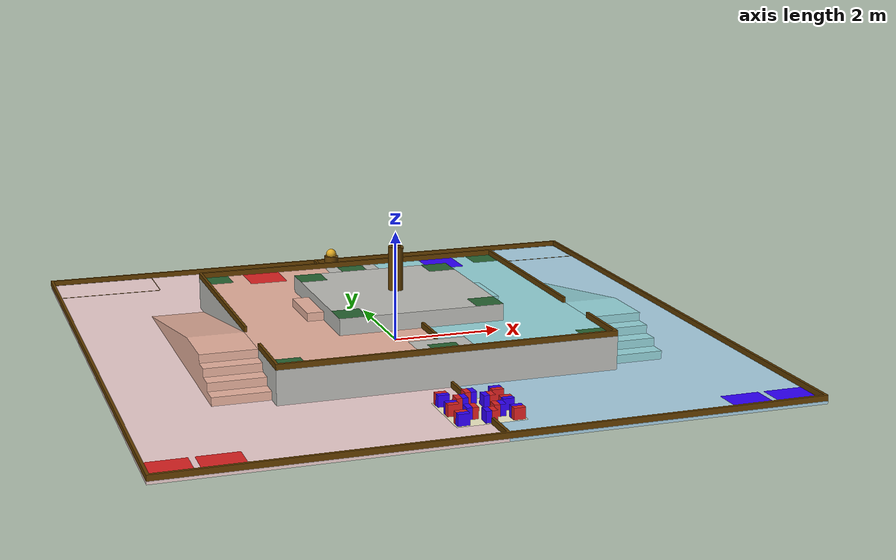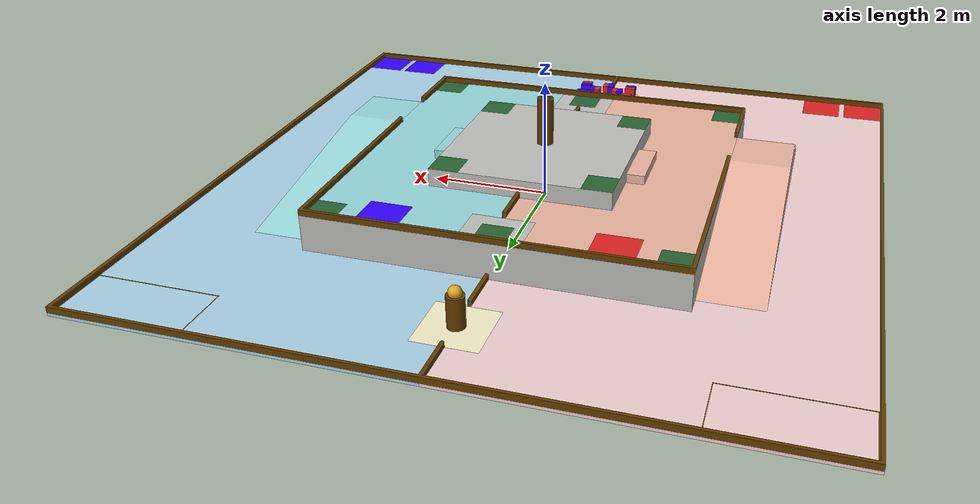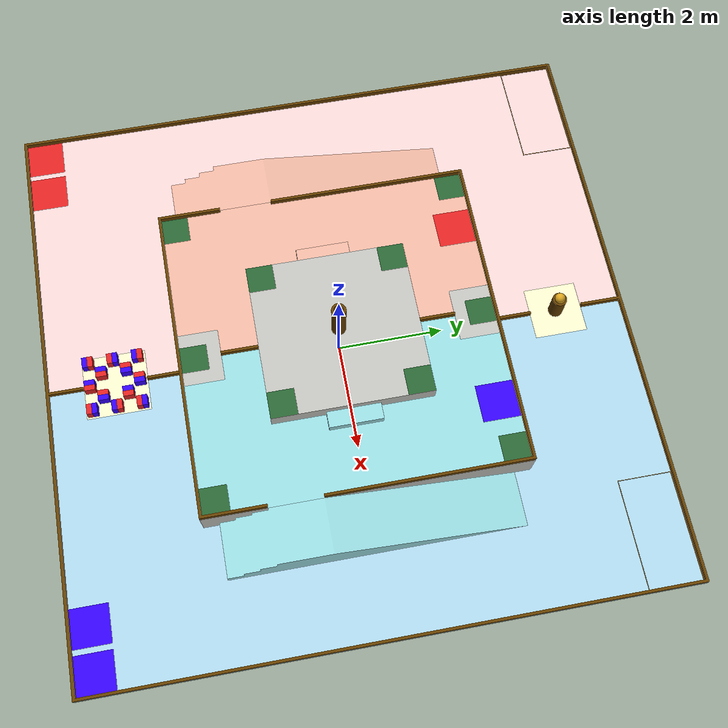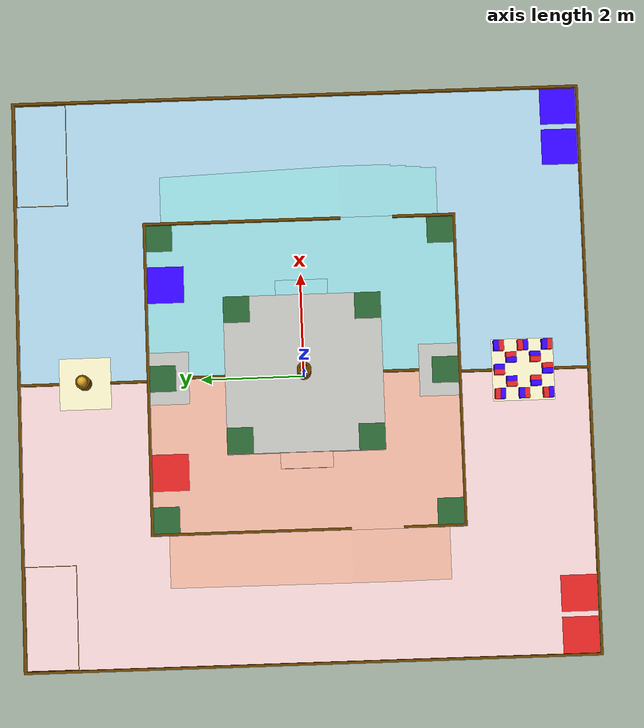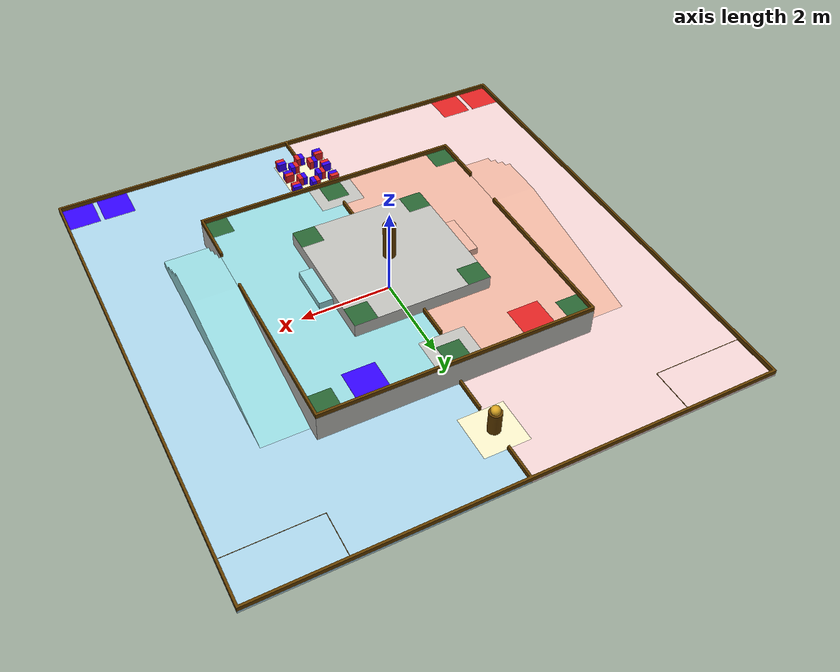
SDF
<?xml version="1.0"?>
<sdf version="1.7">
  <world name="robocon_2027">
    <gravity>0 0 -9.80665</gravity>
    <physics name="ode" type="ode">
      <max_step_size>0.001</max_step_size>
      <real_time_factor>1.0</real_time_factor>
    </physics>
    <scene>
      <ambient>0.25 0.25 0.25 1</ambient>
      <background>0.72 0.78 0.84 1</background>
      <shadows>true</shadows>
    </scene>
    <light name="sun" type="directional">
      <cast_shadows>true</cast_shadows>
      <pose>0 0 12 0 0 0</pose>
      <diffuse>0.65 0.65 0.65 1</diffuse>
      <specular>0.10 0.10 0.10 1</specular>
      <direction>-0.35 0.25 -0.9</direction>
    </light>
    <include>
      <uri>model://robocon_2027_field</uri>
    </include>
  </world>
</sdf>

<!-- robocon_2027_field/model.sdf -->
<sdf version="1.7">
  <model name="robocon_2027_field">
    <static>true</static>
    <link name="field">
      <!-- CAD uses millimetres and Y-up; Gazebo uses metres and Z-up. -->
      <pose>0 0 0.025 1.5707963267948966 0 0</pose>
      <collision name="field_collision">
        <geometry>
          <mesh>
            <uri>model://robocon_2027_field/meshes/robocon_2027_field.stl</uri>
            <scale>0.001 0.001 0.001</scale>
          </mesh>
        </geometry>
        <max_contacts>20</max_contacts>
        <surface>
          <friction><ode><mu>0.8</mu><mu2>0.8</mu2></ode></friction>
          <contact><ode><kp>10000000</kp><kd>1</kd><max_vel>0.1</max_vel><min_depth>0.001</min_depth></ode></contact>
        </surface>
      </collision>
      <visual name="component_001_ground_blue">
        <cast_shadows>false</cast_shadows>
        <geometry>
          <mesh>
            <uri>model://robocon_2027_field/visuals_fixed/component_001.stl</uri>
            <scale>0.001 0.001 0.001</scale>
          </mesh>
        </geometry>
        <material>
          <ambient>0.666667 0.823529 0.901961 1</ambient>
          <diffuse>0.666667 0.823529 0.901961 1</diffuse>
          <specular>0.10 0.14 0.18 1</specular>
        </material>
      </visual>
      <visual name="component_002_ground_red">
        <cast_shadows>false</cast_shadows>
        <geometry>
          <mesh>
            <uri>model://robocon_2027_field/visuals_fixed/component_002.stl</uri>
            <scale>0.001 0.001 0.001</scale>
          </mesh>
        </geometry>
        <material>
          <ambient>0.941176 0.823529 0.823529 1</ambient>
          <diffuse>0.941176 0.823529 0.823529 1</diffuse>
          <specular>0.16 0.12 0.12 1</specular>
        </material>
      </visual>
      <visual name="component_003_boundary_brown">
        <cast_shadows>false</cast_shadows>
        <geometry>
          <mesh>
            <uri>model://robocon_2027_field/visuals_fixed/component_003.stl</uri>
            <scale>0.001 0.001 0.001</scale>
          </mesh>
        </geometry>
        <material>
          <ambient>0.392157 0.243137 0.000000 1</ambient>
          <diffuse>0.392157 0.243137 0.000000 1</diffuse>
          <specular>0.05 0.025 0.005 1</specular>
        </material>
      </visual>
      <visual name="component_004_bright_red">
        <cast_shadows>false</cast_shadows>
        <geometry>
          <mesh>
            <uri>model://robocon_2027_field/visuals_fixed/component_004.stl</uri>
            <scale>0.001 0.001 0.001</scale>
          </mesh>
        </geometry>
        <material>
          <ambient>0.874510 0.133333 0.133333 1</ambient>
          <diffuse>0.874510 0.133333 0.133333 1</diffuse>
          <specular>0.18 0.01 0.01 1</specular>
        </material>
      </visual>
      <visual name="component_005_bright_blue">
        <cast_shadows>false</cast_shadows>
        <geometry>
          <mesh>
            <uri>model://robocon_2027_field/visuals_fixed/component_005.stl</uri>
            <scale>0.001 0.001 0.001</scale>
          </mesh>
        </geometry>
        <material>
          <ambient>0.196078 0.000000 1.000000 1</ambient>
          <diffuse>0.196078 0.000000 1.000000 1</diffuse>
          <specular>0.02 0.01 0.18 1</specular>
        </material>
      </visual>
      <visual name="component_006_ground_red">
        <cast_shadows>false</cast_shadows>
        <pose>0 0.0005 0 0 0 0</pose>
        <geometry>
          <mesh>
            <uri>model://robocon_2027_field/visuals_fixed/component_006.stl</uri>
            <scale>0.001 0.001 0.001</scale>
          </mesh>
        </geometry>
        <material>
          <ambient>0.941176 0.823529 0.823529 1</ambient>
          <diffuse>0.941176 0.823529 0.823529 1</diffuse>
          <specular>0.16 0.12 0.12 1</specular>
        </material>
      </visual>
      <visual name="component_007_ground_blue">
        <cast_shadows>false</cast_shadows>
        <pose>0 0.0005 0 0 0 0</pose>
        <geometry>
          <mesh>
            <uri>model://robocon_2027_field/visuals_fixed/component_007.stl</uri>
            <scale>0.001 0.001 0.001</scale>
          </mesh>
        </geometry>
        <material>
          <ambient>0.666667 0.823529 0.901961 1</ambient>
          <diffuse>0.666667 0.823529 0.901961 1</diffuse>
          <specular>0.10 0.14 0.18 1</specular>
        </material>
      </visual>
      <visual name="component_008_shared">
        <cast_shadows>false</cast_shadows>
        <geometry>
          <mesh>
            <uri>model://robocon_2027_field/visuals_fixed/component_008.stl</uri>
            <scale>0.001 0.001 0.001</scale>
          </mesh>
        </geometry>
        <material>
          <ambient>0.960784 0.941176 0.784314 1</ambient>
          <diffuse>0.960784 0.941176 0.784314 1</diffuse>
          <specular>0.16 0.15 0.08 1</specular>
        </material>
      </visual>
      <visual name="component_009_shared">
        <cast_shadows>false</cast_shadows>
        <geometry>
          <mesh>
            <uri>model://robocon_2027_field/visuals_fixed/component_009.stl</uri>
            <scale>0.001 0.001 0.001</scale>
          </mesh>
        </geometry>
        <material>
          <ambient>0.960784 0.941176 0.784314 1</ambient>
          <diffuse>0.960784 0.941176 0.784314 1</diffuse>
          <specular>0.16 0.15 0.08 1</specular>
        </material>
      </visual>
      <visual name="component_010_boundary_brown">
        <cast_shadows>false</cast_shadows>
        <geometry>
          <mesh>
            <uri>model://robocon_2027_field/visuals_fixed/component_010.stl</uri>
            <scale>0.001 0.001 0.001</scale>
          </mesh>
        </geometry>
        <material>
          <ambient>0.392157 0.243137 0.000000 1</ambient>
          <diffuse>0.392157 0.243137 0.000000 1</diffuse>
          <specular>0.05 0.025 0.005 1</specular>
        </material>
      </visual>
      <visual name="component_011_bright_red">
        <cast_shadows>false</cast_shadows>
        <geometry>
          <mesh>
            <uri>model://robocon_2027_field/visuals_fixed/component_011.stl</uri>
            <scale>0.001 0.001 0.001</scale>
          </mesh>
        </geometry>
        <material>
          <ambient>0.874510 0.133333 0.133333 1</ambient>
          <diffuse>0.874510 0.133333 0.133333 1</diffuse>
          <specular>0.18 0.01 0.01 1</specular>
        </material>
      </visual>
      <visual name="component_012_bright_blue">
        <cast_shadows>false</cast_shadows>
        <geometry>
          <mesh>
            <uri>model://robocon_2027_field/visuals_fixed/component_012.stl</uri>
            <scale>0.001 0.001 0.001</scale>
          </mesh>
        </geometry>
        <material>
          <ambient>0.196078 0.000000 1.000000 1</ambient>
          <diffuse>0.196078 0.000000 1.000000 1</diffuse>
          <specular>0.02 0.01 0.18 1</specular>
        </material>
      </visual>
      <visual name="component_013_stone">
        <cast_shadows>false</cast_shadows>
        <geometry>
          <mesh>
            <uri>model://robocon_2027_field/visuals_fixed/component_013.stl</uri>
            <scale>0.001 0.001 0.001</scale>
          </mesh>
        </geometry>
        <material>
          <ambient>0.854902 0.647059 0.125490 1</ambient>
          <diffuse>0.854902 0.647059 0.125490 1</diffuse>
          <specular>0.18 0.12 0.02 1</specular>
        </material>
      </visual>
      <visual name="component_014_level_neutral">
        <cast_shadows>false</cast_shadows>
        <geometry>
          <mesh>
            <uri>model://robocon_2027_field/visuals_fixed/component_014.stl</uri>
            <scale>0.001 0.001 0.001</scale>
          </mesh>
        </geometry>
        <material>
          <ambient>0.745098 0.745098 0.725490 1</ambient>
          <diffuse>0.745098 0.745098 0.725490 1</diffuse>
          <specular>0.12 0.12 0.11 1</specular>
        </material>
      </visual>
      <visual name="component_015_level_red">
        <cast_shadows>false</cast_shadows>
        <geometry>
          <mesh>
            <uri>model://robocon_2027_field/visuals_fixed/component_015.stl</uri>
            <scale>0.001 0.001 0.001</scale>
          </mesh>
        </geometry>
        <material>
          <ambient>0.921569 0.705882 0.627451 1</ambient>
          <diffuse>0.921569 0.705882 0.627451 1</diffuse>
          <specular>0.16 0.10 0.08 1</specular>
        </material>
      </visual>
      <visual name="component_016_level_blue">
        <cast_shadows>false</cast_shadows>
        <geometry>
          <mesh>
            <uri>model://robocon_2027_field/visuals_fixed/component_016.stl</uri>
            <scale>0.001 0.001 0.001</scale>
          </mesh>
        </geometry>
        <material>
          <ambient>0.588235 0.843137 0.862745 1</ambient>
          <diffuse>0.588235 0.843137 0.862745 1</diffuse>
          <specular>0.08 0.14 0.15 1</specular>
        </material>
      </visual>
      <visual name="component_017_bright_red">
        <cast_shadows>false</cast_shadows>
        <geometry>
          <mesh>
            <uri>model://robocon_2027_field/visuals_fixed/component_017.stl</uri>
            <scale>0.001 0.001 0.001</scale>
          </mesh>
        </geometry>
        <material>
          <ambient>0.874510 0.133333 0.133333 1</ambient>
          <diffuse>0.874510 0.133333 0.133333 1</diffuse>
          <specular>0.18 0.01 0.01 1</specular>
        </material>
      </visual>
      <visual name="component_018_bright_blue">
        <cast_shadows>false</cast_shadows>
        <geometry>
          <mesh>
            <uri>model://robocon_2027_field/visuals_fixed/component_018.stl</uri>
            <scale>0.001 0.001 0.001</scale>
          </mesh>
        </geometry>
        <material>
          <ambient>0.196078 0.000000 1.000000 1</ambient>
          <diffuse>0.196078 0.000000 1.000000 1</diffuse>
          <specular>0.02 0.01 0.18 1</specular>
        </material>
      </visual>
      <visual name="component_019_boundary_brown">
        <cast_shadows>false</cast_shadows>
        <geometry>
          <mesh>
            <uri>model://robocon_2027_field/visuals_fixed/component_019.stl</uri>
            <scale>0.001 0.001 0.001</scale>
          </mesh>
        </geometry>
        <material>
          <ambient>0.392157 0.243137 0.000000 1</ambient>
          <diffuse>0.392157 0.243137 0.000000 1</diffuse>
          <specular>0.05 0.025 0.005 1</specular>
        </material>
      </visual>
      <visual name="component_020_stair_red">
        <cast_shadows>true</cast_shadows>
        <geometry>
          <mesh>
            <uri>model://robocon_2027_field/visuals_fixed/component_020.stl</uri>
            <scale>0.001 0.001 0.001</scale>
          </mesh>
        </geometry>
        <material>
          <ambient>0.921569 0.705882 0.627451 1</ambient>
          <diffuse>0.921569 0.705882 0.627451 1</diffuse>
          <specular>0.16 0.10 0.08 1</specular>
        </material>
      </visual>
      <visual name="component_021_stair_blue">
        <cast_shadows>true</cast_shadows>
        <geometry>
          <mesh>
            <uri>model://robocon_2027_field/visuals_fixed/component_021.stl</uri>
            <scale>0.001 0.001 0.001</scale>
          </mesh>
        </geometry>
        <material>
          <ambient>0.588235 0.843137 0.862745 1</ambient>
          <diffuse>0.588235 0.843137 0.862745 1</diffuse>
          <specular>0.08 0.14 0.15 1</specular>
        </material>
      </visual>
      <visual name="component_022_green">
        <cast_shadows>false</cast_shadows>
        <geometry>
          <mesh>
            <uri>model://robocon_2027_field/visuals_fixed/component_022.stl</uri>
            <scale>0.001 0.001 0.001</scale>
          </mesh>
        </geometry>
        <material>
          <ambient>0.156863 0.392157 0.196078 1</ambient>
          <diffuse>0.156863 0.392157 0.196078 1</diffuse>
          <specular>0.02 0.10 0.04 1</specular>
        </material>
      </visual>
      <visual name="component_023_green">
        <cast_shadows>false</cast_shadows>
        <geometry>
          <mesh>
            <uri>model://robocon_2027_field/visuals_fixed/component_023.stl</uri>
            <scale>0.001 0.001 0.001</scale>
          </mesh>
        </geometry>
        <material>
          <ambient>0.156863 0.392157 0.196078 1</ambient>
          <diffuse>0.156863 0.392157 0.196078 1</diffuse>
          <specular>0.02 0.10 0.04 1</specular>
        </material>
      </visual>
      <visual name="component_024_green">
        <cast_shadows>false</cast_shadows>
        <geometry>
          <mesh>
            <uri>model://robocon_2027_field/visuals_fixed/component_024.stl</uri>
            <scale>0.001 0.001 0.001</scale>
          </mesh>
        </geometry>
        <material>
          <ambient>0.156863 0.392157 0.196078 1</ambient>
          <diffuse>0.156863 0.392157 0.196078 1</diffuse>
          <specular>0.02 0.10 0.04 1</specular>
        </material>
      </visual>
      <visual name="component_025_green">
        <cast_shadows>false</cast_shadows>
        <geometry>
          <mesh>
            <uri>model://robocon_2027_field/visuals_fixed/component_025.stl</uri>
            <scale>0.001 0.001 0.001</scale>
          </mesh>
        </geometry>
        <material>
          <ambient>0.156863 0.392157 0.196078 1</ambient>
          <diffuse>0.156863 0.392157 0.196078 1</diffuse>
          <specular>0.02 0.10 0.04 1</specular>
        </material>
      </visual>
      <visual name="component_026_green">
        <cast_shadows>false</cast_shadows>
        <geometry>
          <mesh>
            <uri>model://robocon_2027_field/visuals_fixed/component_026.stl</uri>
            <scale>0.001 0.001 0.001</scale>
          </mesh>
        </geometry>
        <material>
          <ambient>0.156863 0.392157 0.196078 1</ambient>
          <diffuse>0.156863 0.392157 0.196078 1</diffuse>
          <specular>0.02 0.10 0.04 1</specular>
        </material>
      </visual>
      <visual name="component_027_green">
        <cast_shadows>false</cast_shadows>
        <geometry>
          <mesh>
            <uri>model://robocon_2027_field/visuals_fixed/component_027.stl</uri>
            <scale>0.001 0.001 0.001</scale>
          </mesh>
        </geometry>
        <material>
          <ambient>0.156863 0.392157 0.196078 1</ambient>
          <diffuse>0.156863 0.392157 0.196078 1</diffuse>
          <specular>0.02 0.10 0.04 1</specular>
        </material>
      </visual>
      <visual name="component_028_green">
        <cast_shadows>false</cast_shadows>
        <geometry>
          <mesh>
            <uri>model://robocon_2027_field/visuals_fixed/component_028.stl</uri>
            <scale>0.001 0.001 0.001</scale>
          </mesh>
        </geometry>
        <material>
          <ambient>0.156863 0.392157 0.196078 1</ambient>
          <diffuse>0.156863 0.392157 0.196078 1</diffuse>
          <specular>0.02 0.10 0.04 1</specular>
        </material>
      </visual>
      <visual name="component_029_green">
        <cast_shadows>false</cast_shadows>
        <geometry>
          <mesh>
            <uri>model://robocon_2027_field/visuals_fixed/component_029.stl</uri>
            <scale>0.001 0.001 0.001</scale>
          </mesh>
        </geometry>
        <material>
          <ambient>0.156863 0.392157 0.196078 1</ambient>
          <diffuse>0.156863 0.392157 0.196078 1</diffuse>
          <specular>0.02 0.10 0.04 1</specular>
        </material>
      </visual>
      <visual name="component_030_green">
        <cast_shadows>false</cast_shadows>
        <geometry>
          <mesh>
            <uri>model://robocon_2027_field/visuals_fixed/component_030.stl</uri>
            <scale>0.001 0.001 0.001</scale>
          </mesh>
        </geometry>
        <material>
          <ambient>0.156863 0.392157 0.196078 1</ambient>
          <diffuse>0.156863 0.392157 0.196078 1</diffuse>
          <specular>0.02 0.10 0.04 1</specular>
        </material>
      </visual>
      <visual name="component_031_green">
        <cast_shadows>false</cast_shadows>
        <geometry>
          <mesh>
            <uri>model://robocon_2027_field/visuals_fixed/component_031.stl</uri>
            <scale>0.001 0.001 0.001</scale>
          </mesh>
        </geometry>
        <material>
          <ambient>0.156863 0.392157 0.196078 1</ambient>
          <diffuse>0.156863 0.392157 0.196078 1</diffuse>
          <specular>0.02 0.10 0.04 1</specular>
        </material>
      </visual>
      <visual name="component_032_stair_red">
        <cast_shadows>true</cast_shadows>
        <geometry>
          <mesh>
            <uri>model://robocon_2027_field/visuals_fixed/component_032.stl</uri>
            <scale>0.001 0.001 0.001</scale>
          </mesh>
        </geometry>
        <material>
          <ambient>0.921569 0.705882 0.627451 1</ambient>
          <diffuse>0.921569 0.705882 0.627451 1</diffuse>
          <specular>0.16 0.10 0.08 1</specular>
        </material>
      </visual>
      <visual name="component_033_stair_blue">
        <cast_shadows>true</cast_shadows>
        <geometry>
          <mesh>
            <uri>model://robocon_2027_field/visuals_fixed/component_033.stl</uri>
            <scale>0.001 0.001 0.001</scale>
          </mesh>
        </geometry>
        <material>
          <ambient>0.588235 0.843137 0.862745 1</ambient>
          <diffuse>0.588235 0.843137 0.862745 1</diffuse>
          <specular>0.08 0.14 0.15 1</specular>
        </material>
      </visual>
      <visual name="component_034_level_neutral">
        <cast_shadows>false</cast_shadows>
        <geometry>
          <mesh>
            <uri>model://robocon_2027_field/visuals_fixed/component_034.stl</uri>
            <scale>0.001 0.001 0.001</scale>
          </mesh>
        </geometry>
        <material>
          <ambient>0.745098 0.745098 0.725490 1</ambient>
          <diffuse>0.745098 0.745098 0.725490 1</diffuse>
          <specular>0.12 0.12 0.11 1</specular>
        </material>
      </visual>
      <visual name="component_035_boundary_brown">
        <cast_shadows>false</cast_shadows>
        <geometry>
          <mesh>
            <uri>model://robocon_2027_field/visuals_fixed/component_035.stl</uri>
            <scale>0.001 0.001 0.001</scale>
          </mesh>
        </geometry>
        <material>
          <ambient>0.392157 0.243137 0.000000 1</ambient>
          <diffuse>0.392157 0.243137 0.000000 1</diffuse>
          <specular>0.05 0.025 0.005 1</specular>
        </material>
      </visual>
      <visual name="storage_red_outline_front">
        <cast_shadows>true</cast_shadows>
        <pose>-4.500 0.027 -5.495 0 0 0</pose>
        <geometry><box><size>2.000 0.004 0.010</size></box></geometry>
        <material>
          <ambient>0.392157 0.243137 0.000000 1</ambient>
          <diffuse>0.392157 0.243137 0.000000 1</diffuse>
          <specular>0.05 0.025 0.005 1</specular>
        </material>
      </visual>
      <visual name="storage_red_outline_back">
        <cast_shadows>true</cast_shadows>
        <pose>-4.500 0.027 -4.505 0 0 0</pose>
        <geometry><box><size>2.000 0.004 0.010</size></box></geometry>
        <material>
          <ambient>0.392157 0.243137 0.000000 1</ambient>
          <diffuse>0.392157 0.243137 0.000000 1</diffuse>
          <specular>0.05 0.025 0.005 1</specular>
        </material>
      </visual>
      <visual name="storage_red_outline_left">
        <cast_shadows>true</cast_shadows>
        <pose>-5.495 0.027 -5.000 0 0 0</pose>
        <geometry><box><size>0.010 0.004 1.000</size></box></geometry>
        <material>
          <ambient>0.392157 0.243137 0.000000 1</ambient>
          <diffuse>0.392157 0.243137 0.000000 1</diffuse>
          <specular>0.05 0.025 0.005 1</specular>
        </material>
      </visual>
      <visual name="storage_red_outline_right">
        <cast_shadows>true</cast_shadows>
        <pose>-3.505 0.027 -5.000 0 0 0</pose>
        <geometry><box><size>0.010 0.004 1.000</size></box></geometry>
        <material>
          <ambient>0.392157 0.243137 0.000000 1</ambient>
          <diffuse>0.392157 0.243137 0.000000 1</diffuse>
          <specular>0.05 0.025 0.005 1</specular>
        </material>
      </visual>
      <visual name="storage_blue_outline_front">
        <cast_shadows>true</cast_shadows>
        <pose>4.500 0.027 -5.495 0 0 0</pose>
        <geometry><box><size>2.000 0.004 0.010</size></box></geometry>
        <material>
          <ambient>0.392157 0.243137 0.000000 1</ambient>
          <diffuse>0.392157 0.243137 0.000000 1</diffuse>
          <specular>0.05 0.025 0.005 1</specular>
        </material>
      </visual>
      <visual name="storage_blue_outline_back">
        <cast_shadows>true</cast_shadows>
        <pose>4.500 0.027 -4.505 0 0 0</pose>
        <geometry><box><size>2.000 0.004 0.010</size></box></geometry>
        <material>
          <ambient>0.392157 0.243137 0.000000 1</ambient>
          <diffuse>0.392157 0.243137 0.000000 1</diffuse>
          <specular>0.05 0.025 0.005 1</specular>
        </material>
      </visual>
      <visual name="storage_blue_outline_left">
        <cast_shadows>true</cast_shadows>
        <pose>3.505 0.027 -5.000 0 0 0</pose>
        <geometry><box><size>0.010 0.004 1.000</size></box></geometry>
        <material>
          <ambient>0.392157 0.243137 0.000000 1</ambient>
          <diffuse>0.392157 0.243137 0.000000 1</diffuse>
          <specular>0.05 0.025 0.005 1</specular>
        </material>
      </visual>
      <visual name="storage_blue_outline_right">
        <cast_shadows>true</cast_shadows>
        <pose>5.495 0.027 -5.000 0 0 0</pose>
        <geometry><box><size>0.010 0.004 1.000</size></box></geometry>
        <material>
          <ambient>0.392157 0.243137 0.000000 1</ambient>
          <diffuse>0.392157 0.243137 0.000000 1</diffuse>
          <specular>0.05 0.025 0.005 1</specular>
        </material>
      </visual>
    </link>
  </model>
</sdf>
